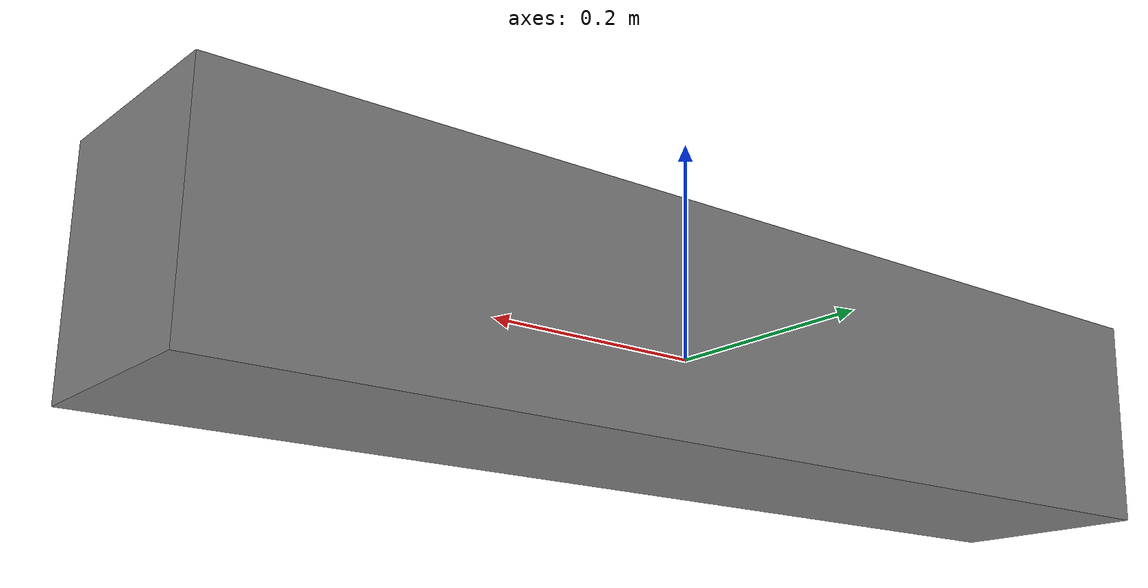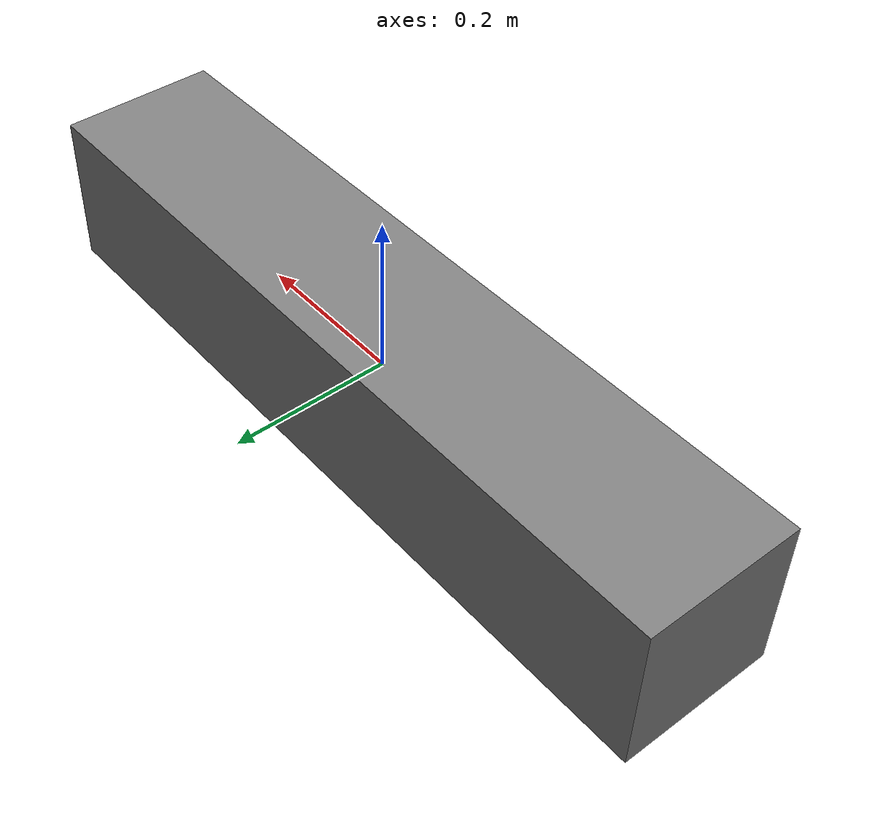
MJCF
<mujoco model="actuated">
            <option gravity="0 0 0" timestep="0.001"/>
            <worldbody>
                <body name="motor" pos="0 0 0">
                    <joint name="motor_joint" type="hinge" axis="0 0 1"/>
                    <geom type="box" size="0.5 0.1 0.1" mass="1.0"/>
                </body>
            </worldbody>
            <actuator>
                <motor name="motor1" joint="motor_joint" gear="10"/>
            </actuator>
        </mujoco>
